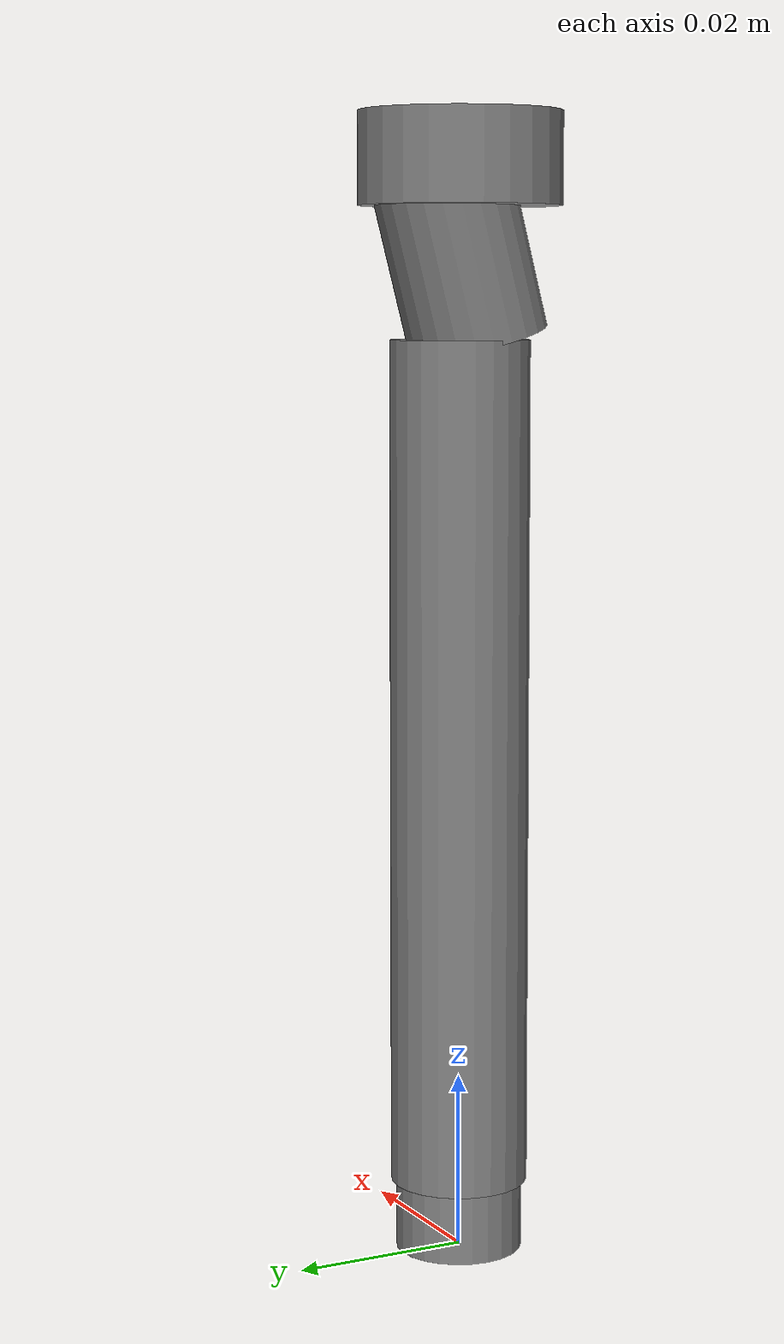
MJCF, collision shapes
<!-- @bbox dx=0.023 dy=0.023 dz=0.129 -->
<mujoco model="centrifuge_tube_15ml">
  <compiler angle="radian"/>
  <default>
    <default class="visual">
      <geom group="1" type="mesh" contype="0" conaffinity="0" mass="0"/>
    </default>
    <default class="collision">
      <geom group="3" solref="0.001 2" solimp="0.998 0.998 0.001" friction="1 1 0.001"/>
    </default>
    <default class="keypoint">
      <site type="sphere" size="0.005" group="3" rgba="1 0 0 1"/>
    </default>
    <default class="grasppoint">
      <site type="sphere" size="0.008" group="4" rgba="0 0 1 0.2"/>
    </default>
    <default class="placepoint">
      <site type="sphere" size="0.005" group="2" rgba="0 0 1 0"/>
    </default>
  </default>
  <asset>
    <material name="tube_body" rgba="1 1 1 0.2" specular="0.5" shininess="0.5"/>
    <material name="tube_cap" rgba="0.9294 0.2706 0.0627 1" specular="0.5" shininess="0.3"/>
    <mesh name="body" file="centrifuge_tube_15ml_body.STL" scale="0.001 0.001 0.001"/>
    <mesh name="cap" file="centrifuge_tube_15ml_cap.STL" scale="0.001 0.001 0.001"/>
  </asset>
  <worldbody>
    <body name="centrifuge_tube_15ml">
      <inertial pos="0 0 0.05" mass="0.01" diaginertia="2.5e-06 2.5e-06 1.2e-06"/>
      <!-- visuals -->
      <geom type="mesh" mesh="body" material="tube_body" class="visual"/>
      <geom type="mesh" mesh="cap" material="tube_cap" class="visual" pos="0 0 0.1186"/>
      <!-- solution display geom: translucent cylinder inside tube, alpha=0 until filled
           (LiquidDisplayMixin looks up geom named "solution") -->
      <geom name="solution" type="cylinder" size="0.0065 0.04" pos="0 0 0.046" rgba="1 1 1 0" class="visual"/>
      <!-- collision: base + main barrel + shoulder + cap (primitives only, cheap & robust) -->
      <geom type="cylinder" size="0.0072 0.005" pos="0 0 0.005" class="collision"/>
      <geom type="cylinder" size="0.0078 0.048" pos="0 0 0.056" class="collision"/>
      <geom type="cylinder" size="0.0078 0.009" pos="0 0 0.1125" quat="1 -0.13052621 0 0" class="collision"/>
      <geom type="cylinder" size="0.0113 0.0051" pos="0 0 0.1237" class="collision"/>
      <!-- grasp sites: body barrel + skirt + cap (recommended finger positions) -->
      <site class="grasppoint" pos="0 0 0.055"/>
      <site class="grasppoint" pos="0 0 0.105"/>
      <site class="grasppoint" pos="0 0 0.124"/>
      <!-- keypoints for bbox / contain checks -->
      <site class="keypoint" name="bottom_site" pos="0 0 0"/>
      <site class="keypoint" name="top_site" pos="0 0 0.1288"/>
      <!-- placepoint at tube mouth for dispense/insert skills -->
      <site class="placepoint" name="placepoint" pos="0 0 0.1288"/>
    </body>
  </worldbody>
</mujoco>
